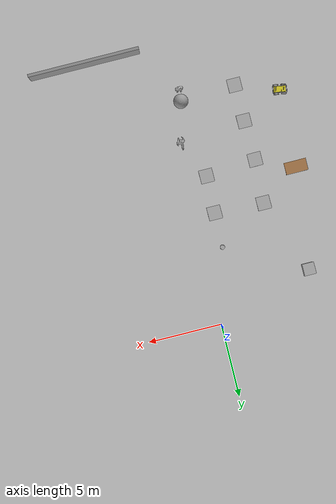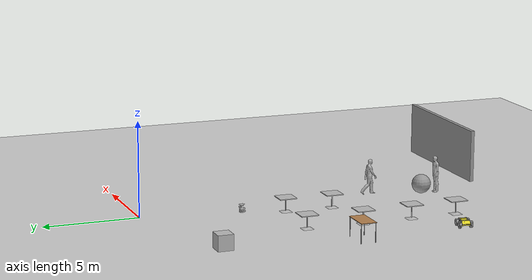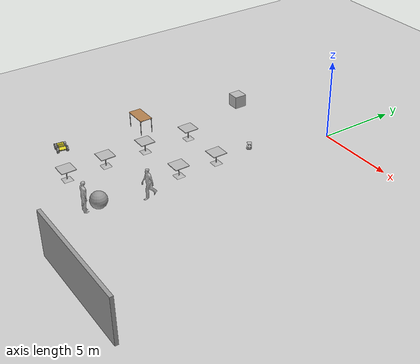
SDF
<sdf version="1.6">
 <world name="default">
  <light name="sun" type="directional">
   <pose>0 0 10 0 -0 0</pose>
   <diffuse>0.8 0.8 0.8 1</diffuse>
   <specular>0.2 0.2 0.2 1</specular>
   <attenuation>
    <range>1000</range>
    <constant>0.9</constant>
    <linear>0.01</linear>
    <quadratic>0.001</quadratic>
   </attenuation>
   <direction>-0.5 0.1 -0.9</direction>
  </light>
  <model name="ground_plane">
   <static>1</static>
   <link name="link">
    <collision name="collision">
     <geometry><plane><normal>0 0 1</normal><size>100 100</size></plane></geometry>
     <surface><friction><ode><mu>100</mu><mu2>50</mu2></ode></friction></surface>
    </collision>
    <visual name="visual">
     <cast_shadows>0</cast_shadows>
     <geometry><plane><normal>0 0 1</normal><size>100 100</size></plane></geometry>
     <material>
      <script><uri>file://media/materials/scripts/gazebo.material</uri><name>Gazebo/Grey</name></script>
     </material>
    </visual>
   </link>
  </model>
  <gravity>0 0 -9.8</gravity>
  <magnetic_field>6e-06 2.3e-05 -4.2e-05</magnetic_field>
  <atmosphere type="adiabatic"/>
  <physics name="default_physics" default="0" type="ode">
   <max_step_size>0.001</max_step_size>
   <real_time_factor>1</real_time_factor>
   <real_time_update_rate>1000</real_time_update_rate>
  </physics>
  <scene><ambient>0.4 0.4 0.4 1</ambient><background>0.7 0.7 0.7 1</background><shadows>1</shadows></scene>
  <spherical_coordinates>
   <surface_model>EARTH_WGS84</surface_model>
   <latitude_deg>0</latitude_deg>
   <longitude_deg>0</longitude_deg>
   <elevation>0</elevation>
   <heading_deg>0</heading_deg>
  </spherical_coordinates>
  <model name="cafe_table">
   <static>1</static>
   <link name="link">
    <collision name="surface">
     <pose>0 0 0.755 0 -0 0</pose>
     <geometry><box><size>0.913 0.913 0.04</size></box></geometry>
    </collision>
    <collision name="column">
     <pose>0 0 0.37 0 -0 0</pose>
     <geometry><box><size>0.042 0.042 0.74</size></box></geometry>
    </collision>
    <collision name="base">
     <pose>0 0 0.02 0 -0 0</pose>
     <geometry><box><size>0.56 0.56 0.04</size></box></geometry>
    </collision>
    <visual name="visual">
     <geometry><mesh><uri>model://cafe_table/meshes/cafe_table.dae</uri></mesh></geometry>
    </visual>
   </link>
   <pose>-4.72031 -7.20485 0 0 -0 0</pose>
  </model>
  <model name="cafe_table_0">
   <static>1</static>
   <link name="link">
    <collision name="surface">
     <pose>0 0 0.755 0 -0 0</pose>
     <geometry><box><size>0.913 0.913 0.04</size></box></geometry>
    </collision>
    <collision name="column">
     <pose>0 0 0.37 0 -0 0</pose>
     <geometry><box><size>0.042 0.042 0.74</size></box></geometry>
    </collision>
    <collision name="base">
     <pose>0 0 0.02 0 -0 0</pose>
     <geometry><box><size>0.56 0.56 0.04</size></box></geometry>
    </collision>
    <visual name="visual">
     <geometry><mesh><uri>model://cafe_table/meshes/cafe_table.dae</uri></mesh></geometry>
    </visual>
   </link>
   <pose>-4.87405 -10.1547 0 0 -0 0</pose>
  </model>
  <model name="cafe_table_clone">
   <static>1</static>
   <link name="link">
    <collision name="surface">
     <pose>0 0 0.755 0 -0 0</pose>
     <geometry><box><size>0.913 0.913 0.04</size></box></geometry>
    </collision>
    <collision name="column">
     <pose>0 0 0.37 0 -0 0</pose>
     <geometry><box><size>0.042 0.042 0.74</size></box></geometry>
    </collision>
    <collision name="base">
     <pose>0 0 0.02 0 -0 0</pose>
     <geometry><box><size>0.56 0.56 0.04</size></box></geometry>
    </collision>
    <visual name="visual">
     <geometry><mesh><uri>model://cafe_table/meshes/cafe_table.dae</uri></mesh></geometry>
    </visual>
   </link>
   <pose>-4.80024 -12.83 0 0 -0 0</pose>
  </model>
  <model name="cafe_table_clone_0">
   <static>1</static>
   <link name="link">
    <collision name="surface">
     <pose>0 0 0.755 0 -0 0</pose>
     <geometry><box><size>0.913 0.913 0.04</size></box></geometry>
    </collision>
    <collision name="column">
     <pose>0 0 0.37 0 -0 0</pose>
     <geometry><box><size>0.042 0.042 0.74</size></box></geometry>
    </collision>
    <collision name="base">
     <pose>0 0 0.02 0 -0 0</pose>
     <geometry><box><size>0.56 0.56 0.04</size></box></geometry>
    </collision>
    <visual name="visual">
     <geometry><mesh><uri>model://cafe_table/meshes/cafe_table.dae</uri></mesh></geometry>
    </visual>
   </link>
   <pose>-4.77432 -15.3086 0 0 -0 0</pose>
  </model>
  <model name="cafe_table_clone_1">
   <static>1</static>
   <link name="link">
    <collision name="surface">
     <pose>0 0 0.755 0 -0 0</pose>
     <geometry><box><size>0.913 0.913 0.04</size></box></geometry>
    </collision>
    <collision name="column">
     <pose>0 0 0.37 0 -0 0</pose>
     <geometry><box><size>0.042 0.042 0.74</size></box></geometry>
    </collision>
    <collision name="base">
     <pose>0 0 0.02 0 -0 0</pose>
     <geometry><box><size>0.56 0.56 0.04</size></box></geometry>
    </collision>
    <visual name="visual">
     <geometry><mesh><uri>model://cafe_table/meshes/cafe_table.dae</uri></mesh></geometry>
    </visual>
   </link>
   <pose>-1.38633 -7.3601 0 0 -0 0</pose>
  </model>
  <model name="cafe_table_clone_2">
   <static>1</static>
   <link name="link">
    <collision name="surface">
     <pose>0 0 0.755 0 -0 0</pose>
     <geometry><box><size>0.913 0.913 0.04</size></box></geometry>
    </collision>
    <collision name="column">
     <pose>0 0 0.37 0 -0 0</pose>
     <geometry><box><size>0.042 0.042 0.74</size></box></geometry>
    </collision>
    <collision name="base">
     <pose>0 0 0.02 0 -0 0</pose>
     <geometry><box><size>0.56 0.56 0.04</size></box></geometry>
    </collision>
    <visual name="visual">
     <geometry><mesh><uri>model://cafe_table/meshes/cafe_table.dae</uri></mesh></geometry>
    </visual>
   </link>
   <pose>-1.46943 -9.87815 0 0 -0 0</pose>
  </model>
  <model name="person_walking">
   <link name="link">
    <inertial>
     <pose>0 0 0.95 0 -0 0</pose>
     <mass>80</mass>
     <inertia><ixx>27.82</ixx><ixy>0</ixy><ixz>0</ixz><iyy>24.88</iyy><iyz>0</iyz><izz>4.57</izz></inertia>
    </inertial>
    <collision name="bottom">
     <pose>0 0 0.01 0 -0 0</pose>
     <geometry><box><size>0.35 0.75 0.02</size></box></geometry>
    </collision>
    <collision name="person">
     <pose>0 0 -0.02 0 -0 0</pose>
     <geometry><mesh><uri>model://person_walking/meshes/walking.dae</uri></mesh></geometry>
    </collision>
    <visual name="visual">
     <pose>0 0 -0.02 0 -0 0</pose>
     <geometry><mesh><uri>model://person_walking/meshes/walking.dae</uri></mesh></geometry>
    </visual>
   </link>
   <pose>-0.332756 -12.4363 0.189799 0 4e-06 -0.099299</pose>
  </model>
  <model name="person_standing">
   <link name="link">
    <inertial>
     <pose>0 -0.1 0.95 0 -0 0</pose>
     <mass>80</mass>
     <inertia><ixx>24.88</ixx><ixy>0</ixy><ixz>0</ixz><iyy>25.73</iyy><iyz>0</iyz><izz>2.48</izz></inertia>
    </inertial>
    <collision name="bottom">
     <pose>0 -0.1 0.01 0 -0 0</pose>
     <geometry><box><size>0.5 0.35 0.02</size></box></geometry>
    </collision>
    <collision name="person">
     <pose>0 0 0.02 0.04 -0 0</pose>
     <geometry><mesh><uri>model://person_standing/meshes/standing.dae</uri></mesh></geometry>
    </collision>
    <visual name="visual">
     <pose>0 0 0.02 0.04 -0 0</pose>
     <geometry><mesh><uri>model://person_standing/meshes/standing.dae</uri></mesh></geometry>
    </visual>
   </link>
   <pose>-1.11631 -16.0062 0.1898 1e-06 1e-06 3.03974</pose>
  </model>
  <model name="grey_wall">
   <static>1</static>
   <link name="link">
    <pose>0 0 1.4 0 -0 0</pose>
    <collision name="collision"><geometry><box><size>7.5 0.2 2.8</size></box></geometry></collision>
    <visual name="visual">
     <cast_shadows>0</cast_shadows>
     <geometry><box><size>7.5 0.2 2.8</size></box></geometry>
     <material>
      <script>
       <uri>model://grey_wall/materials/scripts</uri>
       <uri>model://grey_wall/materials/textures</uri>
       <name>vrc/grey_wall</name>
      </script>
     </material>
    </visual>
   </link>
   <pose>4.58402 -19.0624 0 0 -0 0</pose>
  </model>
  <model name="unit_sphere">
   <pose>-1.03774 -15.1406 0.6898 0 -0 0</pose>
   <link name="link">
    <inertial>
     <mass>1</mass>
     <inertia><ixx>0.1</ixx><ixy>0</ixy><ixz>0</ixz><iyy>0.1</iyy><iyz>0</iyz><izz>0.1</izz></inertia>
    </inertial>
    <collision name="collision"><geometry><sphere><radius>0.5</radius></sphere></geometry></collision>
    <visual name="visual">
     <geometry><sphere><radius>0.5</radius></sphere></geometry>
     <material>
      <script><name>Gazebo/Grey</name><uri>file://media/materials/scripts/gazebo.material</uri></script>
     </material>
    </visual>
   </link>
  </model>
  <model name="husky">
   <pose>-7.66125 -14.3163 0.332548 1e-05 1e-06 -0.157514</pose>
   <link name="base_link">
    <collision name="collision">
     <pose>0 0 0.1 0 -0 0</pose>
     <geometry><box><size>1.0074 0.5709 0.2675</size></box></geometry>
    </collision>
    <inertial>
     <mass>33.855</mass>
     <pose>-0.085613 -0.00084 0.238145 0 -0 0</pose>
     <inertia>
      <ixx>2.2343</ixx>
      <ixy>-0.023642</ixy>
      <ixz>0.275174</ixz>
      <iyy>3.42518</iyy>
      <iyz>0.00239624</iyz>
      <izz>2.1241</izz>
     </inertia>
    </inertial>
    <visual name="base">
     <geometry><mesh><uri>model://husky/meshes/base_link.stl</uri></mesh></geometry>
     <material><script><name>Gazebo/FlatBlack</name><uri>__default__</uri></script></material>
    </visual>
    <visual name="top_plate">
     <geometry><mesh><uri>model://husky/meshes/top_plate.stl</uri></mesh></geometry>
     <material><script><name>Gazebo/Yellow</name><uri>__default__</uri></script></material>
    </visual>
    <visual name="front_bumper">
     <pose>0.47 0 0.091 0 -0 0</pose>
     <geometry><mesh><uri>model://husky/meshes/bumper.stl</uri></mesh></geometry>
     <material><script><name>Gazebo/FlatBlack</name><uri>__default__</uri></script></material>
    </visual>
    <visual name="rear_bumper">
     <pose>-0.47 0 0.091 0 -0 3.141</pose>
     <geometry><mesh><uri>model://husky/meshes/bumper.stl</uri></mesh></geometry>
     <material><script><name>Gazebo/FlatBlack</name><uri>__default__</uri></script></material>
    </visual>
    <visual name="user_rail">
     <pose>0.272 0 0.245 0 -0 0</pose>
     <geometry><mesh><uri>model://husky/meshes/user_rail.stl</uri></mesh></geometry>
     <material><script><name>Gazebo/Grey</name><uri>__default__</uri></script></material>
    </visual>
   </link>
   <link name="back_left_wheel">
    <pose>-0.256 0.285475 0.035 0 -0 0</pose>
    <inertial>
     <mass>2.6357</mass>
     <inertia>
      <ixx>0.0246688</ixx>
      <ixy>0</ixy>
      <ixz>0</ixz>
      <iyy>0.0246688</iyy>
      <iyz>0</iyz>
      <izz>0.0441058</izz>
     </inertia>
    </inertial>
    <collision name="back_left_wheel_collision">
     <pose>0 0 0 -1.5707 0 0</pose>
     <geometry><cylinder><radius>0.17775</radius><length>0.1143</length></cylinder></geometry>
     <surface>
      <friction><ode><mu>100000</mu><mu2>100000</mu2><slip1>0</slip1><slip2>0</slip2></ode></friction>
     </surface>
    </collision>
    <visual name="back_left_wheel">
     <pose>0 0 0 -3.14159 0 0</pose>
     <geometry><mesh><uri>model://husky/meshes/wheel.stl</uri></mesh></geometry>
     <material><script><name>Gazebo/Grey</name><uri>__default__</uri></script></material>
    </visual>
   </link>
   <joint name="back_left_joint" type="revolute">
    <parent>base_link</parent>
    <child>back_left_wheel</child>
    <axis>
     <xyz>0 1 0</xyz>
     <use_parent_model_frame>1</use_parent_model_frame>
     <limit><lower>-1e+16</lower><upper>1e+16</upper></limit>
     <dynamics><spring_reference>0</spring_reference><spring_stiffness>0</spring_stiffness></dynamics>
    </axis>
    <physics><ode><limit><cfm>0</cfm><erp>0.9</erp></limit></ode></physics>
   </joint>
   <link name="back_right_wheel">
    <pose>-0.256 -0.285475 0.035 0 -0 0</pose>
    <inertial>
     <mass>2.6357</mass>
     <inertia>
      <ixx>0.0246688</ixx>
      <ixy>0</ixy>
      <ixz>0</ixz>
      <iyy>0.0246688</iyy>
      <iyz>0</iyz>
      <izz>0.0441058</izz>
     </inertia>
    </inertial>
    <collision name="back_right_wheel_collision">
     <pose>0 0 0 -1.5707 0 0</pose>
     <geometry><cylinder><radius>0.17775</radius><length>0.1143</length></cylinder></geometry>
     <surface>
      <friction><ode><mu>100000</mu><mu2>100000</mu2><slip1>0</slip1><slip2>0</slip2></ode></friction>
     </surface>
    </collision>
    <visual name="back_right_wheel">
     <pose>0 0 0 -3.14159 0 0</pose>
     <geometry><mesh><uri>model://husky/meshes/wheel.stl</uri></mesh></geometry>
     <material><script><name>Gazebo/Grey</name><uri>__default__</uri></script></material>
    </visual>
   </link>
   <joint name="back_right_joint" type="revolute">
    <parent>base_link</parent>
    <child>back_right_wheel</child>
    <axis>
     <xyz>0 1 0</xyz>
     <use_parent_model_frame>1</use_parent_model_frame>
     <limit><lower>-1e+16</lower><upper>1e+16</upper></limit>
     <dynamics><spring_reference>0</spring_reference><spring_stiffness>0</spring_stiffness></dynamics>
    </axis>
    <physics><ode><limit><cfm>0</cfm><erp>0.9</erp></limit></ode></physics>
   </joint>
   <link name="front_left_wheel">
    <pose>0.256 0.285475 0.035 0 -0 0</pose>
    <inertial>
     <mass>2.6357</mass>
     <inertia>
      <ixx>0.0246688</ixx>
      <ixy>0</ixy>
      <ixz>0</ixz>
      <iyy>0.0246688</iyy>
      <iyz>0</iyz>
      <izz>0.0441058</izz>
     </inertia>
    </inertial>
    <collision name="front_left_wheel_collision">
     <pose>0 0 0 -1.5707 0 0</pose>
     <geometry><cylinder><radius>0.17775</radius><length>0.1143</length></cylinder></geometry>
     <surface>
      <friction><ode><mu>100000</mu><mu2>100000</mu2><slip1>0</slip1><slip2>0</slip2></ode></friction>
     </surface>
    </collision>
    <visual name="front_left_wheel">
     <pose>0 0 0 -3.14159 0 0</pose>
     <geometry><mesh><uri>model://husky/meshes/wheel.stl</uri></mesh></geometry>
     <material><script><name>Gazebo/Grey</name><uri>__default__</uri></script></material>
    </visual>
   </link>
   <joint name="front_left_joint" type="revolute">
    <parent>base_link</parent>
    <child>front_left_wheel</child>
    <axis>
     <xyz>0 1 0</xyz>
     <use_parent_model_frame>1</use_parent_model_frame>
     <limit><lower>-1e+16</lower><upper>1e+16</upper></limit>
     <dynamics><spring_reference>0</spring_reference><spring_stiffness>0</spring_stiffness></dynamics>
    </axis>
    <physics><ode><limit><cfm>0</cfm><erp>0.9</erp></limit></ode></physics>
   </joint>
   <link name="front_right_wheel">
    <pose>0.256 -0.285475 0.035 0 -0 0</pose>
    <inertial>
     <mass>2.6357</mass>
     <inertia>
      <ixx>0.0246688</ixx>
      <ixy>0</ixy>
      <ixz>0</ixz>
      <iyy>0.0246688</iyy>
      <iyz>0</iyz>
      <izz>0.0441058</izz>
     </inertia>
    </inertial>
    <collision name="front_right_wheel_collision">
     <pose>0 0 0 -1.5707 0 0</pose>
     <geometry><cylinder><radius>0.17775</radius><length>0.1143</length></cylinder></geometry>
     <surface>
      <friction><ode><mu>100000</mu><mu2>100000</mu2><slip1>0</slip1><slip2>0</slip2></ode></friction>
     </surface>
    </collision>
    <visual name="front_right_wheel">
     <pose>0 0 0 -3.14159 0 0</pose>
     <geometry><mesh><uri>model://husky/meshes/wheel.stl</uri></mesh></geometry>
     <material><script><name>Gazebo/Grey</name><uri>__default__</uri></script></material>
    </visual>
   </link>
   <joint name="front_right_joint" type="revolute">
    <parent>base_link</parent>
    <child>front_right_wheel</child>
    <axis>
     <xyz>0 1 0</xyz>
     <use_parent_model_frame>1</use_parent_model_frame>
     <limit><lower>-1e+16</lower><upper>1e+16</upper></limit>
     <dynamics><spring_reference>0</spring_reference><spring_stiffness>0</spring_stiffness></dynamics>
    </axis>
    <physics><ode><limit><cfm>0</cfm><erp>0.9</erp></limit></ode></physics>
   </joint>
   <plugin name="husky_diff_controller" filename="libhusky_gazebo_plugins.so">
    <alwaysOn>true</alwaysOn>
    <updateRate>100.0</updateRate>
    <backLeftJoint>back_left_joint</backLeftJoint>
    <backRightJoint>back_right_joint</backRightJoint>
    <frontLeftJoint>front_left_joint</frontLeftJoint>
    <frontRightJoint>front_right_joint</frontRightJoint>
    <wheelSeparation>0.5709</wheelSeparation>
    <wheelDiameter>0.3555</wheelDiameter>
    <torque>35</torque>
   </plugin>
  </model>
  <model name="turtlebot">
   <link name="rack">
    <inertial>
     <pose>0.001453 -0.000453 0.029787 0 -0 0</pose>
     <inertia>
      <ixx>0.05864</ixx>
      <ixy>0.000124</ixy>
      <ixz>0.000615</ixz>
      <iyy>0.058786</iyy>
      <iyz>1.4e-05</iyz>
      <izz>1.53244</izz>
     </inertia>
     <mass>2.234</mass>
    </inertial>
    <collision name="plate_0_collision">
     <pose>-0.04334 0 0.084757 0 -0 0</pose>
     <geometry><box><size>0.233502 0.314845 0.006401</size></box></geometry>
    </collision>
    <visual name="plate_0_visual">
     <pose>-0.04334 0 0.084757 0 -0 0</pose>
     <geometry><mesh><uri>model://turtlebot/meshes/plate_0_logo.dae</uri></mesh></geometry>
    </visual>
    <collision name="plate_1_collision">
     <pose>-0.00266 0 0.141907 0 -0 0</pose>
     <geometry><box><size>0.314856 0.314856 0.006401</size></box></geometry>
    </collision>
    <visual name="plate_1_visual">
     <pose>-0.00266 0 0.141907 0 -0 0</pose>
     <geometry><mesh><uri>model://turtlebot/meshes/plate_1_logo.dae</uri></mesh></geometry>
    </visual>
    <collision name="plate_2_collision">
     <pose>-0.00266 0 0.199108 0 -0 0</pose>
     <geometry><box><size>0.314856 0.314856 0.006401</size></box></geometry>
    </collision>
    <visual name="plate_2_visual">
     <pose>-0.00266 0 0.199108 0 -0 0</pose>
     <geometry><mesh><uri>model://turtlebot/meshes/plate_1_logo.dae</uri></mesh></geometry>
    </visual>
    <collision name="plate_3_collision">
     <pose>-0.01582 0 0.405457 0 -0 0</pose>
     <geometry><box><size>0.288 0.315 0.006401</size></box></geometry>
    </collision>
    <visual name="plate_3_visual">
     <pose>-0.01582 0 0.405457 0 -0 0</pose>
     <geometry><mesh><uri>model://turtlebot/meshes/plate_2_logo.dae</uri></mesh></geometry>
    </visual>
    <collision name="spacer_0_collision">
     <pose>-0.00254 0.111468 0.079992 0 -0 0</pose>
     <geometry><cylinder><radius>0.0127</radius><length>0.003175</length></cylinder></geometry>
    </collision>
    <visual name="spacer_0_visual">
     <pose>-0.00254 0.111468 0.079992 0 -0 0</pose>
     <geometry><mesh><uri>model://turtlebot/meshes/68-02403-125_Spacer.dae</uri></mesh></geometry>
    </visual>
    <collision name="spacer_1_collision">
     <pose>-0.00254 -0.111468 0.079992 0 -0 0</pose>
     <geometry><cylinder><radius>0.0127</radius><length>0.003175</length></cylinder></geometry>
    </collision>
    <visual name="spacer_1_visual">
     <pose>-0.00254 -0.111468 0.079992 0 -0 0</pose>
     <geometry><mesh><uri>model://turtlebot/meshes/68-02403-125_Spacer.dae</uri></mesh></geometry>
    </visual>
    <collision name="spacer_2_collision">
     <pose>-0.07239 -0.111468 0.079992 0 -0 0</pose>
     <geometry><cylinder><radius>0.0127</radius><length>0.003175</length></cylinder></geometry>
    </collision>
    <visual name="spacer_2_visual">
     <pose>-0.07239 -0.111468 0.079992 0 -0 0</pose>
     <geometry><mesh><uri>model://turtlebot/meshes/68-02403-125_Spacer.dae</uri></mesh></geometry>
    </visual>
    <collision name="spacer_3_collision">
     <pose>-0.07239 0.111468 0.079992 0 -0 0</pose>
     <geometry><cylinder><radius>0.0127</radius><length>0.003175</length></cylinder></geometry>
    </collision>
    <visual name="spacer_3_visual">
     <pose>-0.07239 0.111468 0.079992 0 -0 0</pose>
     <geometry><mesh><uri>model://turtlebot/meshes/68-02403-125_Spacer.dae</uri></mesh></geometry>
    </visual>
    <collision name="standoff_2in_0_collision">
     <pose>0.06764 0.13142 0.08798 0 -0 0</pose>
     <geometry><cylinder><radius>0.0381</radius><length>0.0635</length></cylinder></geometry>
    </collision>
    <visual name="standoff_2in_0_visual">
     <pose>0.06764 0.13142 0.08798 0 -0 0</pose>
     <geometry>
      <mesh><uri>model://turtlebot/meshes/68-04552-2000-RA_Turtlebot_M-F_Standoff.dae</uri></mesh>
     </geometry>
    </visual>
    <collision name="standoff_2in_1_collision">
     <pose>0.06764 -0.13142 0.08798 0 -0 0</pose>
     <geometry><cylinder><radius>0.0381</radius><length>0.0635</length></cylinder></geometry>
    </collision>
    <visual name="standoff_2in_1_visual">
     <pose>0.06764 -0.13142 0.08798 0 -0 0</pose>
     <geometry>
      <mesh><uri>model://turtlebot/meshes/68-04552-2000-RA_Turtlebot_M-F_Standoff.dae</uri></mesh>
     </geometry>
    </visual>
    <collision name="standoff_2in_2_collision">
     <pose>-0.052832 -0.13142 0.08798 0 -0 0</pose>
     <geometry><cylinder><radius>0.0381</radius><length>0.0635</length></cylinder></geometry>
    </collision>
    <visual name="standoff_2in_2_visual">
     <pose>-0.052832 -0.13142 0.08798 0 -0 0</pose>
     <geometry>
      <mesh><uri>model://turtlebot/meshes/68-04552-2000-RA_Turtlebot_M-F_Standoff.dae</uri></mesh>
     </geometry>
    </visual>
    <collision name="standoff_2in_3_collision">
     <pose>-0.052832 0.13142 0.08798 0 -0 0</pose>
     <geometry><cylinder><radius>0.0381</radius><length>0.0635</length></cylinder></geometry>
    </collision>
    <visual name="standoff_2in_3_visual">
     <pose>-0.052832 0.13142 0.08798 0 -0 0</pose>
     <geometry>
      <mesh><uri>model://turtlebot/meshes/68-04552-2000-RA_Turtlebot_M-F_Standoff.dae</uri></mesh>
     </geometry>
    </visual>
    <collision name="standoff_2in_4_collision">
     <pose>0.06764 0.13142 0.14513 0 -0 0</pose>
     <geometry><cylinder><radius>0.0381</radius><length>0.0635</length></cylinder></geometry>
    </collision>
    <visual name="standoff_2in_4_visual">
     <pose>0.06764 0.13142 0.14513 0 -0 0</pose>
     <geometry>
      <mesh><uri>model://turtlebot/meshes/68-04552-2000-RA_Turtlebot_M-F_Standoff.dae</uri></mesh>
     </geometry>
    </visual>
    <collision name="standoff_2in_5_collision">
     <pose>0.06764 -0.13142 0.14513 0 -0 0</pose>
     <geometry><cylinder><radius>0.0381</radius><length>0.0635</length></cylinder></geometry>
    </collision>
    <visual name="standoff_2in_5_visual">
     <pose>0.06764 -0.13142 0.14513 0 -0 0</pose>
     <geometry>
      <mesh><uri>model://turtlebot/meshes/68-04552-2000-RA_Turtlebot_M-F_Standoff.dae</uri></mesh>
     </geometry>
    </visual>
    <collision name="standoff_2in_6_collision">
     <pose>-0.052832 -0.13142 0.14513 0 -0 0</pose>
     <geometry><cylinder><radius>0.0381</radius><length>0.0635</length></cylinder></geometry>
    </collision>
    <visual name="standoff_2in_6_visual">
     <pose>-0.052832 -0.13142 0.14513 0 -0 0</pose>
     <geometry>
      <mesh><uri>model://turtlebot/meshes/68-04552-2000-RA_Turtlebot_M-F_Standoff.dae</uri></mesh>
     </geometry>
    </visual>
    <collision name="standoff_2in_7_collision">
     <pose>-0.052832 0.13142 0.14513 0 -0 0</pose>
     <geometry><cylinder><radius>0.0381</radius><length>0.0635</length></cylinder></geometry>
    </collision>
    <visual name="standoff_2in_7_visual">
     <pose>-0.052832 0.13142 0.14513 0 -0 0</pose>
     <geometry>
      <mesh><uri>model://turtlebot/meshes/68-04552-2000-RA_Turtlebot_M-F_Standoff.dae</uri></mesh>
     </geometry>
    </visual>
    <collision name="standoff_8in_0_collision">
     <pose>0.06764 0.13142 0.20228 0 -0 0</pose>
     <geometry><cylinder><radius>0.011113</radius><length>0.2032</length></cylinder></geometry>
    </collision>
    <visual name="standoff_8in_0_visual">
     <pose>0.06764 0.13142 0.20228 0 -0 0</pose>
     <geometry>
      <mesh><uri>model://turtlebot/meshes/68-02421-8000-RA_Turtlebot_F-F_Standoff.dae</uri></mesh>
     </geometry>
    </visual>
    <collision name="standoff_8in_1_collision">
     <pose>0.06764 -0.13142 0.20228 0 -0 0</pose>
     <geometry><cylinder><radius>0.011113</radius><length>0.2032</length></cylinder></geometry>
    </collision>
    <visual name="standoff_8in_1_visual">
     <pose>0.06764 -0.13142 0.20228 0 -0 0</pose>
     <geometry>
      <mesh><uri>model://turtlebot/meshes/68-02421-8000-RA_Turtlebot_F-F_Standoff.dae</uri></mesh>
     </geometry>
    </visual>
    <collision name="standoff_8in_2_collision">
     <pose>-0.052832 -0.13142 0.20228 0 -0 0</pose>
     <geometry><cylinder><radius>0.011113</radius><length>0.2032</length></cylinder></geometry>
    </collision>
    <visual name="standoff_8in_2_visual">
     <pose>-0.052832 -0.13142 0.20228 0 -0 0</pose>
     <geometry>
      <mesh><uri>model://turtlebot/meshes/68-02421-8000-RA_Turtlebot_F-F_Standoff.dae</uri></mesh>
     </geometry>
    </visual>
    <collision name="standoff_8in_3_collision">
     <pose>-0.052832 0.13142 0.20228 0 -0 0</pose>
     <geometry><cylinder><radius>0.011113</radius><length>0.2032</length></cylinder></geometry>
    </collision>
    <visual name="standoff_8in_3_visual">
     <pose>-0.052832 0.13142 0.20228 0 -0 0</pose>
     <geometry>
      <mesh><uri>model://turtlebot/meshes/68-02421-8000-RA_Turtlebot_F-F_Standoff.dae</uri></mesh>
     </geometry>
    </visual>
    <collision name="standoff_kinect_0_collision">
     <pose>-0.105098 0.098 0.202308 0 -0 0</pose>
     <geometry><cylinder><radius>0.001111</radius><length>0.008585</length></cylinder></geometry>
    </collision>
    <visual name="standoff_kinect_0_visual">
     <pose>-0.105098 0.098 0.202308 0 -0 0</pose>
     <geometry><mesh><uri>model://turtlebot/meshes/68-04556-RA_Kinect_Standoff_Assy.dae</uri></mesh></geometry>
    </visual>
    <collision name="standoff_kinect_1_collision">
     <pose>-0.105098 -0.098 0.202308 0 -0 0</pose>
     <geometry><cylinder><radius>0.001111</radius><length>0.008585</length></cylinder></geometry>
    </collision>
    <visual name="standoff_kinect_1_visual">
     <pose>-0.105098 -0.098 0.202308 0 -0 0</pose>
     <geometry><mesh><uri>model://turtlebot/meshes/68-04556-RA_Kinect_Standoff_Assy.dae</uri></mesh></geometry>
    </visual>
    <sensor name="laser" type="ray">
     <pose>-0.065 0 0.092 0 -0 0</pose>
     <ray>
      <scan>
       <horizontal>
        <samples>180</samples>
        <resolution>1</resolution>
        <min_angle>-2.26893</min_angle>
        <max_angle>2.26893</max_angle>
       </horizontal>
       <vertical><samples>1</samples><min_angle>0</min_angle><max_angle>0</max_angle></vertical>
      </scan>
      <range><min>0.08</min><max>10</max><resolution>0.01</resolution></range>
     </ray>
     <update_rate>20</update_rate>
    </sensor>
   </link>
   <link name="create::base">
    <inertial>
     <pose>0.001453 -0.000453 0.029787 0 -0 0</pose>
     <inertia>
      <ixx>0.05864</ixx>
      <ixy>0.000124</ixy>
      <ixz>0.000615</ixz>
      <iyy>0.058786</iyy>
      <iyz>1.4e-05</iyz>
      <izz>1.53244</izz>
     </inertia>
     <mass>2.234</mass>
    </inertial>
    <collision name="base_collision">
     <pose>0 0 0.0478 0 -0 0</pose>
     <geometry><cylinder><radius>0.016495</radius><length>0.061163</length></cylinder></geometry>
    </collision>
    <visual name="base_visual">
     <pose>0 0 0.0478 0 -0 0</pose>
     <geometry><mesh><uri>model://create/meshes/create_body.dae</uri></mesh></geometry>
    </visual>
    <collision name="front_wheel_collision">
     <pose>0.13 0 0.017 -0 1.5707 1.5707</pose>
     <geometry><sphere><radius>0.018</radius></sphere></geometry>
     <surface>
      <friction><ode><mu>0</mu><mu2>0</mu2><fdir1>0 0 0</fdir1><slip1>0</slip1><slip2>0</slip2></ode></friction>
     </surface>
    </collision>
    <visual name="front_wheel_visual">
     <pose>0.13 0 0.017 -0 1.5707 1.5707</pose>
     <geometry><sphere><radius>0.009</radius></sphere></geometry>
    </visual>
    <collision name="rear_wheel_collision">
     <pose>-0.13 0 0.017 -0 1.5707 1.5707</pose>
     <geometry><sphere><radius>0.015</radius></sphere></geometry>
     <surface>
      <friction><ode><mu>0</mu><mu2>0</mu2><fdir1>0 0 0</fdir1><slip1>0</slip1><slip2>0</slip2></ode></friction>
     </surface>
    </collision>
    <visual name="rear_wheel_visual">
     <pose>-0.13 0 0.017 -0 1.5707 1.5707</pose>
     <geometry><sphere><radius>0.0075</radius></sphere></geometry>
    </visual>
    <sensor name="left_cliff_sensor" type="ray">
     <pose>0.07 0.14 0.027 0 1.57079 0</pose>
     <ray>
      <scan>
       <horizontal>
        <samples>1</samples>
        <resolution>1</resolution>
        <min_angle>0</min_angle>
        <max_angle>0</max_angle>
       </horizontal>
       <vertical><samples>1</samples><min_angle>0</min_angle><max_angle>0</max_angle></vertical>
      </scan>
      <range><min>0.01</min><max>0.04</max><resolution>0.1</resolution></range>
     </ray>
    </sensor>
    <sensor name="leftfront_cliff_sensor" type="ray">
     <pose>0.15 0.04 0.027 0 1.57079 0</pose>
     <ray>
      <scan>
       <horizontal>
        <samples>1</samples>
        <resolution>1</resolution>
        <min_angle>0</min_angle>
        <max_angle>0</max_angle>
       </horizontal>
       <vertical><samples>1</samples><min_angle>0</min_angle><max_angle>0</max_angle></vertical>
      </scan>
      <range><min>0.01</min><max>0.04</max><resolution>0.1</resolution></range>
     </ray>
    </sensor>
    <sensor name="right_cliff_sensor" type="ray">
     <pose>0.07 -0.14 0.027 0 1.57079 0</pose>
     <ray>
      <scan>
       <horizontal>
        <samples>1</samples>
        <resolution>1</resolution>
        <min_angle>0</min_angle>
        <max_angle>0</max_angle>
       </horizontal>
       <vertical><samples>1</samples><min_angle>0</min_angle><max_angle>0</max_angle></vertical>
      </scan>
      <range><min>0.01</min><max>0.04</max><resolution>0.1</resolution></range>
     </ray>
    </sensor>
    <sensor name="rightfront_cliff_sensor" type="ray">
     <pose>0.15 -0.04 0.027 0 1.57079 0</pose>
     <ray>
      <scan>
       <horizontal>
        <samples>1</samples>
        <resolution>1</resolution>
        <min_angle>0</min_angle>
        <max_angle>0</max_angle>
       </horizontal>
       <vertical><samples>1</samples><min_angle>0</min_angle><max_angle>0</max_angle></vertical>
      </scan>
      <range><min>0.01</min><max>0.04</max><resolution>0.1</resolution></range>
     </ray>
    </sensor>
    <sensor name="wall_sensor" type="ray">
     <pose>0.09 -0.12 0.059 0 0 -1</pose>
     <ray>
      <scan>
       <horizontal>
        <samples>1</samples>
        <resolution>1</resolution>
        <min_angle>0</min_angle>
        <max_angle>0</max_angle>
       </horizontal>
       <vertical><samples>1</samples><min_angle>0</min_angle><max_angle>0</max_angle></vertical>
      </scan>
      <range><min>0.016</min><max>0.04</max><resolution>0.1</resolution></range>
     </ray>
    </sensor>
   </link>
   <link name="create::left_wheel">
    <pose>0 0.13 0.032 0 -0 0</pose>
    <inertial>
     <inertia><ixx>0.001</ixx><ixy>0</ixy><ixz>0</ixz><iyy>0.001</iyy><iyz>0</iyz><izz>0.001</izz></inertia>
     <mass>0.01</mass>
    </inertial>
    <collision name="collision">
     <pose>0 0 0 -0 1.5707 1.5707</pose>
     <geometry><cylinder><radius>0.033</radius><length>0.023</length></cylinder></geometry>
     <surface>
      <friction><ode><mu>10</mu><mu2>10</mu2><fdir1>0 0 0</fdir1><slip1>0</slip1><slip2>0</slip2></ode></friction>
     </surface>
    </collision>
    <visual name="visual">
     <pose>0 0 0 -0 1.5707 1.5707</pose>
     <geometry><cylinder><radius>0.033</radius><length>0.023</length></cylinder></geometry>
    </visual>
   </link>
   <link name="create::right_wheel">
    <pose>0 -0.13 0.032 0 -0 0</pose>
    <inertial>
     <inertia><ixx>0.001</ixx><ixy>0</ixy><ixz>0</ixz><iyy>0.001</iyy><iyz>0</iyz><izz>0.001</izz></inertia>
     <mass>0.01</mass>
    </inertial>
    <collision name="collision">
     <pose>0 0 0 -0 1.5707 1.5707</pose>
     <geometry><cylinder><radius>0.033</radius><length>0.023</length></cylinder></geometry>
     <surface>
      <friction><ode><mu>10</mu><mu2>10</mu2><fdir1>0 0 0</fdir1><slip1>0</slip1><slip2>0</slip2></ode></friction>
     </surface>
    </collision>
    <visual name="visual">
     <pose>0 0 0 -0 1.5707 1.5707</pose>
     <geometry><cylinder><radius>0.033</radius><length>0.023</length></cylinder></geometry>
    </visual>
   </link>
   <joint name="create::left_wheel" type="revolute">
    <parent>create::base</parent>
    <child>create::left_wheel</child>
    <axis>
     <xyz>0 1 0</xyz>
     <use_parent_model_frame>1</use_parent_model_frame>
     <limit><lower>-1e+16</lower><upper>1e+16</upper></limit>
     <dynamics><spring_reference>0</spring_reference><spring_stiffness>0</spring_stiffness></dynamics>
    </axis>
   </joint>
   <joint name="create::right_wheel" type="revolute">
    <parent>create::base</parent>
    <child>create::right_wheel</child>
    <axis>
     <xyz>0 1 0</xyz>
     <use_parent_model_frame>1</use_parent_model_frame>
     <limit><lower>-1e+16</lower><upper>1e+16</upper></limit>
     <dynamics><spring_reference>0</spring_reference><spring_stiffness>0</spring_stiffness></dynamics>
    </axis>
   </joint>
   <link name="kinect::link">
    <inertial>
     <mass>0.1</mass>
     <inertia><ixx>1</ixx><ixy>0</ixy><ixz>0</ixz><iyy>1</iyy><iyz>0</iyz><izz>1</izz></inertia>
    </inertial>
    <collision name="collision"><geometry><box><size>0.073 0.276 0.072</size></box></geometry></collision>
    <visual name="visual"><geometry><mesh><uri>model://kinect/meshes/kinect.dae</uri></mesh></geometry></visual>
    <sensor name="camera" type="depth">
     <update_rate>20</update_rate>
     <camera name="__default__">
      <horizontal_fov>1.0472</horizontal_fov>
      <image><width>640</width><height>480</height><format>R8G8B8</format></image>
      <clip><near>0.05</near><far>3</far></clip>
     </camera>
    </sensor>
    <pose>-0.087098 0 0.303857 0 -0 0</pose>
   </link>
   <joint name="create_rack" type="revolute">
    <parent>create::base</parent>
    <child>rack</child>
    <axis>
     <xyz>0 0 1</xyz>
     <limit><lower>0</lower><upper>0</upper></limit>
     <use_parent_model_frame>1</use_parent_model_frame>
     <dynamics><spring_reference>0</spring_reference><spring_stiffness>0</spring_stiffness></dynamics>
    </axis>
   </joint>
   <joint name="kinect_rack" type="revolute">
    <parent>kinect::link</parent>
    <child>rack</child>
    <axis>
     <xyz>0 0 1</xyz>
     <limit><lower>0</lower><upper>0</upper></limit>
     <use_parent_model_frame>1</use_parent_model_frame>
     <dynamics><spring_reference>0</spring_reference><spring_stiffness>0</spring_stiffness></dynamics>
    </axis>
   </joint>
   <pose>-1.35342 -5.01394 0.190626 0.000204 -0.021674 -2.05527</pose>
  </model>
  <model name="table">
   <static>1</static>
   <link name="link">
    <collision name="surface">
     <pose>0 0 1 0 -0 0</pose>
     <geometry><box><size>1.5 0.8 0.03</size></box></geometry>
     <surface><friction><ode><mu>0.6</mu><mu2>0.6</mu2></ode></friction></surface>
    </collision>
    <visual name="visual1">
     <pose>0 0 1 0 -0 0</pose>
     <geometry><box><size>1.5 0.8 0.03</size></box></geometry>
     <material>
      <script><uri>file://media/materials/scripts/gazebo.material</uri><name>Gazebo/Wood</name></script>
     </material>
    </visual>
    <collision name="front_left_leg">
     <pose>0.68 0.38 0.5 0 -0 0</pose>
     <geometry><cylinder><radius>0.02</radius><length>1</length></cylinder></geometry>
    </collision>
    <visual name="front_left_leg">
     <pose>0.68 0.38 0.5 0 -0 0</pose>
     <geometry><cylinder><radius>0.02</radius><length>1</length></cylinder></geometry>
     <material>
      <script><uri>file://media/materials/scripts/gazebo.material</uri><name>Gazebo/Grey</name></script>
     </material>
    </visual>
    <collision name="front_right_leg">
     <pose>0.68 -0.38 0.5 0 -0 0</pose>
     <geometry><cylinder><radius>0.02</radius><length>1</length></cylinder></geometry>
    </collision>
    <visual name="front_right_leg">
     <pose>0.68 -0.38 0.5 0 -0 0</pose>
     <geometry><cylinder><radius>0.02</radius><length>1</length></cylinder></geometry>
     <material>
      <script><uri>file://media/materials/scripts/gazebo.material</uri><name>Gazebo/Grey</name></script>
     </material>
    </visual>
    <collision name="back_right_leg">
     <pose>-0.68 -0.38 0.5 0 -0 0</pose>
     <geometry><cylinder><radius>0.02</radius><length>1</length></cylinder></geometry>
    </collision>
    <visual name="back_right_leg">
     <pose>-0.68 -0.38 0.5 0 -0 0</pose>
     <geometry><cylinder><radius>0.02</radius><length>1</length></cylinder></geometry>
     <material>
      <script><uri>file://media/materials/scripts/gazebo.material</uri><name>Gazebo/Grey</name></script>
     </material>
    </visual>
    <collision name="back_left_leg">
     <pose>-0.68 0.38 0.5 0 -0 0</pose>
     <geometry><cylinder><radius>0.02</radius><length>1</length></cylinder></geometry>
    </collision>
    <visual name="back_left_leg">
     <pose>-0.68 0.38 0.5 0 -0 0</pose>
     <geometry><cylinder><radius>0.02</radius><length>1</length></cylinder></geometry>
     <material>
      <script><uri>file://media/materials/scripts/gazebo.material</uri><name>Gazebo/Grey</name></script>
     </material>
    </visual>
   </link>
   <pose>-7.39761 -9.02152 0 0 -0 0</pose>
  </model>
  <model name="number8">
   <pose>-6.58729 -2.18067 0.4 0 -0 0</pose>
   <static>1</static>
   <link name="link">
    <visual name="visual">
     <geometry><mesh><uri>model://number1/meshes/number.dae</uri></mesh></geometry>
     <material>
      <script>
       <uri>model://number8/materials/scripts</uri>
       <uri>model://number8/materials/textures</uri>
       <name>Number/Eight</name>
      </script>
     </material>
    </visual>
   </link>
  </model>
 </world>
</sdf>
